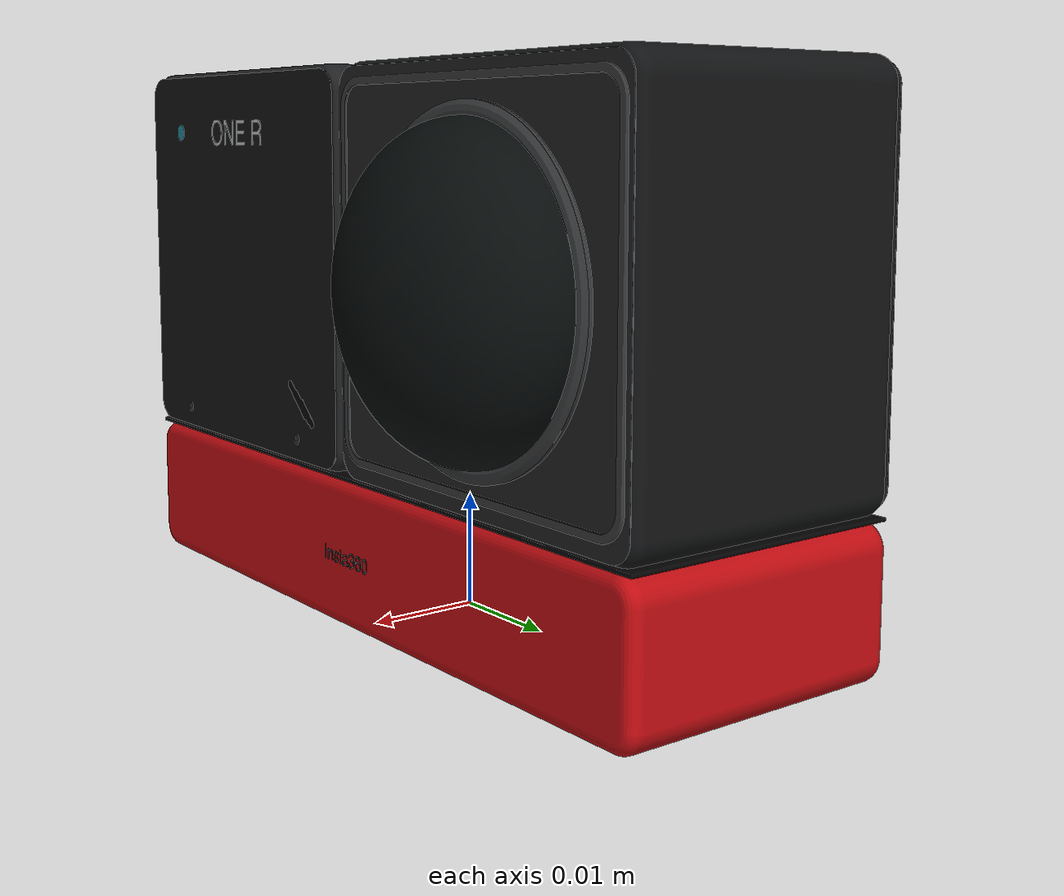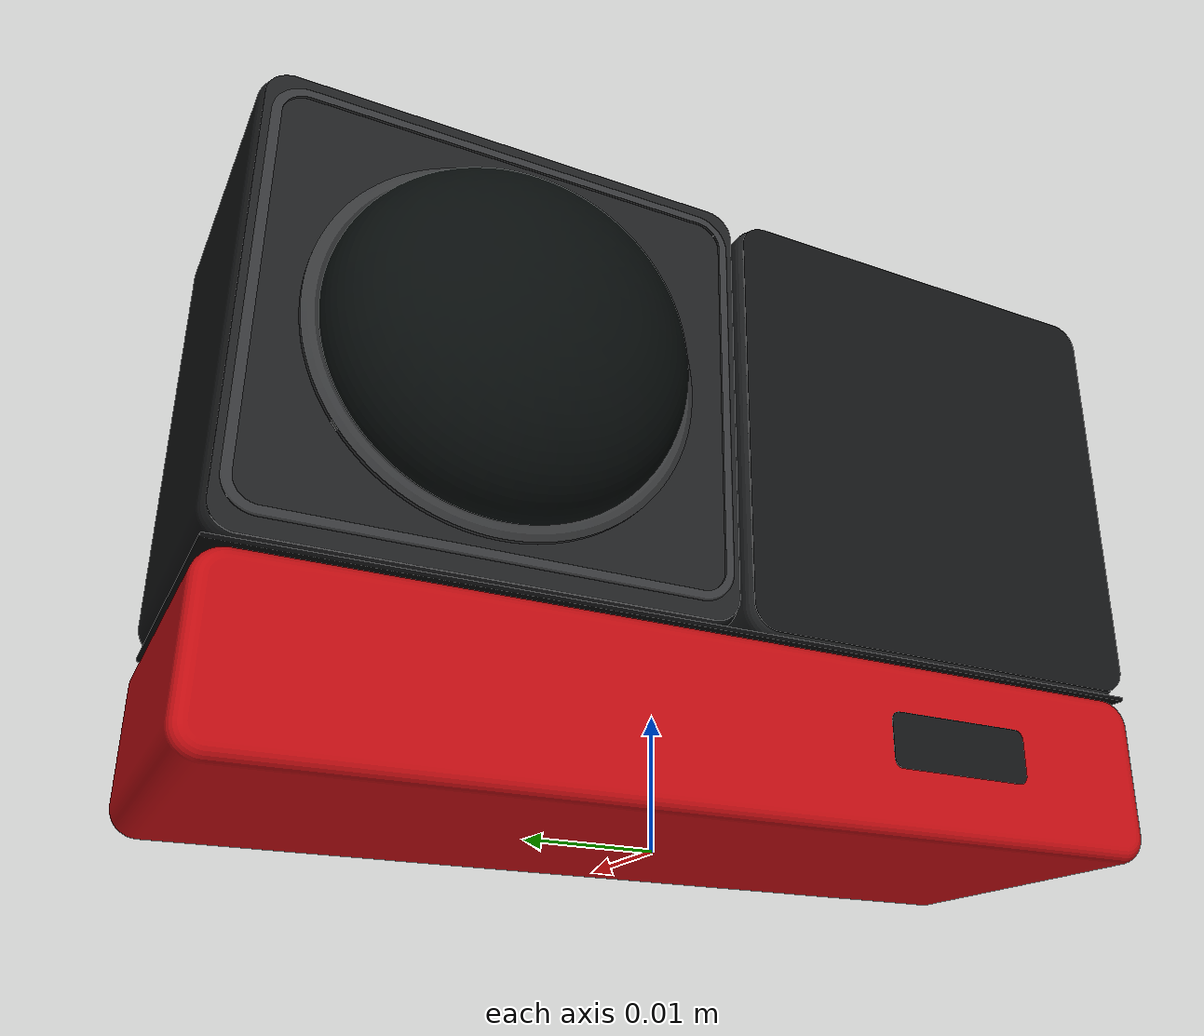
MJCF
<?xml version='1.0' encoding='utf-8'?>
<mujoco model="insta360_one_r_360">
  <!--Independent approximate geometry; fixed sites are geometric references, not calibrated optical frames.-->
  <compiler angle="radian" inertiafromgeom="false" strippath="false" />
  <option timestep="0.002" gravity="0 0 -9.81" />
  <asset>
    <mesh name="one_r_360_visual_mesh_0" file="../assets/meshes/visual/display_black.obj" scale="1 1 1" inertia="shell" />
    <mesh name="one_r_360_visual_mesh_1" file="../assets/meshes/visual/housing.obj" scale="1 1 1" inertia="shell" />
    <mesh name="one_r_360_visual_mesh_2" file="../assets/meshes/visual/lens_ring.obj" scale="1 1 1" inertia="shell" />
    <mesh name="one_r_360_visual_mesh_3" file="../assets/meshes/visual/markings.obj" scale="1 1 1" inertia="shell" />
    <mesh name="one_r_360_visual_mesh_4" file="../assets/meshes/visual/modular_battery.obj" scale="1 1 1" inertia="shell" />
    <mesh name="one_r_360_visual_mesh_5" file="../assets/meshes/visual/muted_markings.obj" scale="1 1 1" inertia="shell" />
    <mesh name="one_r_360_visual_mesh_6" file="../assets/meshes/visual/optical_glass.obj" scale="1 1 1" inertia="shell" />
    <mesh name="one_r_360_visual_mesh_7" file="../assets/meshes/visual/rubber.obj" scale="1 1 1" inertia="shell" />
    <mesh name="one_r_360_visual_mesh_8" file="../assets/meshes/visual/screen.obj" scale="1 1 1" inertia="shell" />
    <mesh name="one_r_360_visual_mesh_9" file="../assets/meshes/visual/screw_metal.obj" scale="1 1 1" inertia="shell" />
    <mesh name="one_r_360_visual_mesh_10" file="../assets/meshes/visual/seam.obj" scale="1 1 1" inertia="shell" />
    <mesh name="one_r_360_visual_mesh_11" file="../assets/meshes/visual/status.obj" scale="1 1 1" inertia="shell" />
    <mesh name="one_r_360_collision_mesh_0" file="../assets/meshes/collision/body.stl" scale="1 1 1" inertia="convex" />
    <mesh name="one_r_360_collision_mesh_1" file="../assets/meshes/collision/core.stl" scale="1 1 1" inertia="convex" />
    <mesh name="one_r_360_collision_mesh_2" file="../assets/meshes/collision/lens_-1.stl" scale="1 1 1" inertia="convex" />
    <mesh name="one_r_360_collision_mesh_3" file="../assets/meshes/collision/lens_1.stl" scale="1 1 1" inertia="convex" />
    <mesh name="one_r_360_collision_mesh_4" file="../assets/meshes/collision/lens_module.stl" scale="1 1 1" inertia="convex" />
  </asset>
  <worldbody>
    <body name="one_r_360_link">
      <inertial pos="0 0 0.024" mass="0.1305" diaginertia="8.1432e-05 4.5163875e-05 7.6483875e-05" quat="1 0 0 0" />
      <geom name="one_r_360_visual_0" type="mesh" mesh="one_r_360_visual_mesh_0" pos="0 0 0" quat="1 0 0 0" density="0" group="2" contype="0" conaffinity="0" rgba="0.01 0.013 0.015 1" />
      <geom name="one_r_360_visual_1" type="mesh" mesh="one_r_360_visual_mesh_1" pos="0 0 0" quat="1 0 0 0" density="0" group="2" contype="0" conaffinity="0" rgba="0.12 0.125 0.13 1" />
      <geom name="one_r_360_visual_2" type="mesh" mesh="one_r_360_visual_mesh_2" pos="0 0 0" quat="1 0 0 0" density="0" group="2" contype="0" conaffinity="0" rgba="0.21 0.215 0.22 1" />
      <geom name="one_r_360_visual_3" type="mesh" mesh="one_r_360_visual_mesh_3" pos="0 0 0" quat="1 0 0 0" density="0" group="2" contype="0" conaffinity="0" rgba="0.72 0.73 0.73 1" />
      <geom name="one_r_360_visual_4" type="mesh" mesh="one_r_360_visual_mesh_4" pos="0 0 0" quat="1 0 0 0" density="0" group="2" contype="0" conaffinity="0" rgba="0.75 0.047 0.065 1" />
      <geom name="one_r_360_visual_5" type="mesh" mesh="one_r_360_visual_mesh_5" pos="0 0 0" quat="1 0 0 0" density="0" group="2" contype="0" conaffinity="0" rgba="0.36 0.38 0.39 1" />
      <geom name="one_r_360_visual_6" type="mesh" mesh="one_r_360_visual_mesh_6" pos="0 0 0" quat="1 0 0 0" density="0" group="2" contype="0" conaffinity="0" rgba="0.026 0.045 0.042 1" />
      <geom name="one_r_360_visual_7" type="mesh" mesh="one_r_360_visual_mesh_7" pos="0 0 0" quat="1 0 0 0" density="0" group="2" contype="0" conaffinity="0" rgba="0.068 0.072 0.076 1" />
      <geom name="one_r_360_visual_8" type="mesh" mesh="one_r_360_visual_mesh_8" pos="0 0 0" quat="1 0 0 0" density="0" group="2" contype="0" conaffinity="0" rgba="0.037 0.043 0.047 1" />
      <geom name="one_r_360_visual_9" type="mesh" mesh="one_r_360_visual_mesh_9" pos="0 0 0" quat="1 0 0 0" density="0" group="2" contype="0" conaffinity="0" rgba="0.19 0.2 0.21 1" />
      <geom name="one_r_360_visual_10" type="mesh" mesh="one_r_360_visual_mesh_10" pos="0 0 0" quat="1 0 0 0" density="0" group="2" contype="0" conaffinity="0" rgba="0.018 0.02 0.022 1" />
      <geom name="one_r_360_visual_11" type="mesh" mesh="one_r_360_visual_mesh_11" pos="0 0 0" quat="1 0 0 0" density="0" group="2" contype="0" conaffinity="0" rgba="0.13 0.5 0.57 1" />
      <geom name="one_r_360_collision_0" type="mesh" mesh="one_r_360_collision_mesh_0" pos="0 0 0" quat="1 0 0 0" density="0" group="3" contype="1" conaffinity="1" rgba="0 0 0 0" />
      <geom name="one_r_360_collision_1" type="mesh" mesh="one_r_360_collision_mesh_1" pos="0 0 0" quat="1 0 0 0" density="0" group="3" contype="1" conaffinity="1" rgba="0 0 0 0" />
      <geom name="one_r_360_collision_2" type="mesh" mesh="one_r_360_collision_mesh_2" pos="0 0 0" quat="1 0 0 0" density="0" group="3" contype="1" conaffinity="1" rgba="0 0 0 0" />
      <geom name="one_r_360_collision_3" type="mesh" mesh="one_r_360_collision_mesh_3" pos="0 0 0" quat="1 0 0 0" density="0" group="3" contype="1" conaffinity="1" rgba="0 0 0 0" />
      <geom name="one_r_360_collision_4" type="mesh" mesh="one_r_360_collision_mesh_4" pos="0 0 0" quat="1 0 0 0" density="0" group="3" contype="1" conaffinity="1" rgba="0 0 0 0" />
      <site name="one_r_360_mount" pos="0 0 0" quat="1 0 0 0" type="sphere" size="0.001" group="4" rgba="0 0 0 0" />
      <site name="one_r_360_rear_lens_surface" pos="-0.0215 0.01773 0.0302" quat="0.500000000002 -0.5 -0.499999999998 0.5" type="sphere" size="0.001" group="4" rgba="0 0 0 0" />
      <site name="one_r_360_front_lens_surface" pos="0.0215 0.01773 0.0302" quat="0.500000000002 -0.5 0.499999999998 -0.5" type="sphere" size="0.001" group="4" rgba="0 0 0 0" />
    </body>
  </worldbody>
</mujoco>
